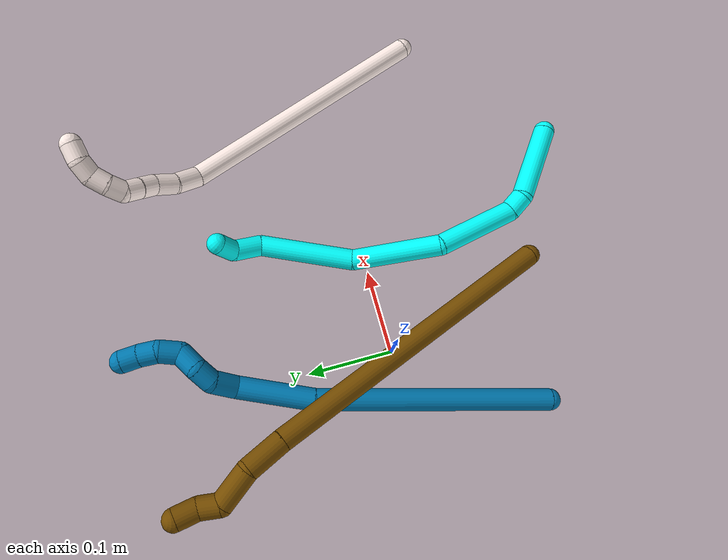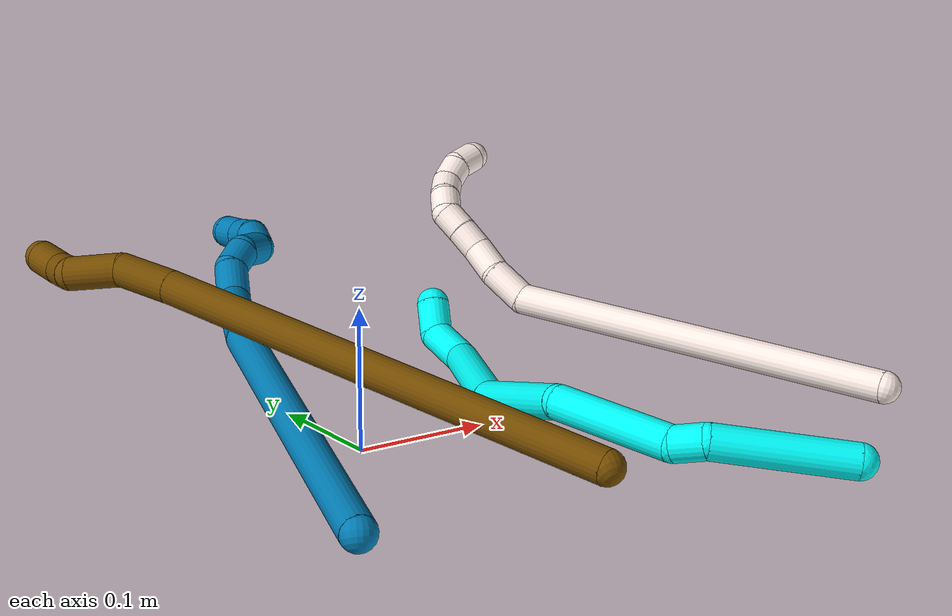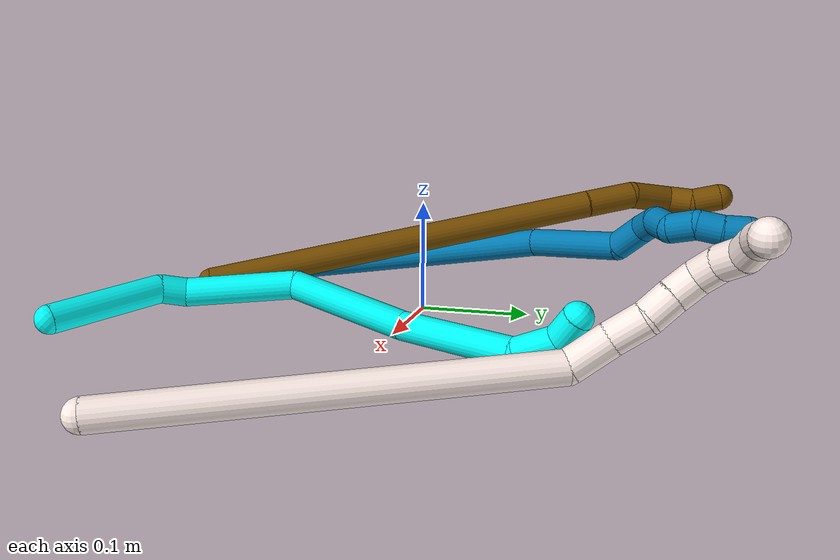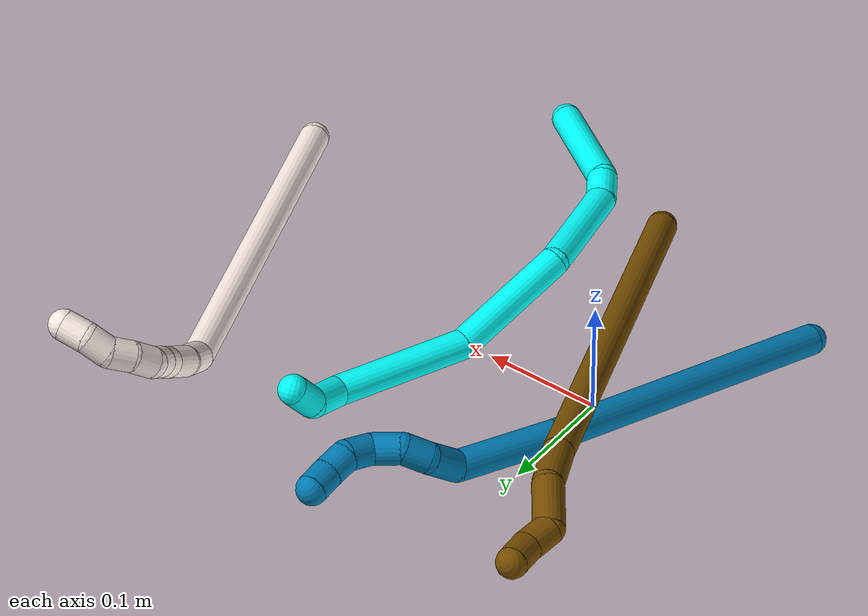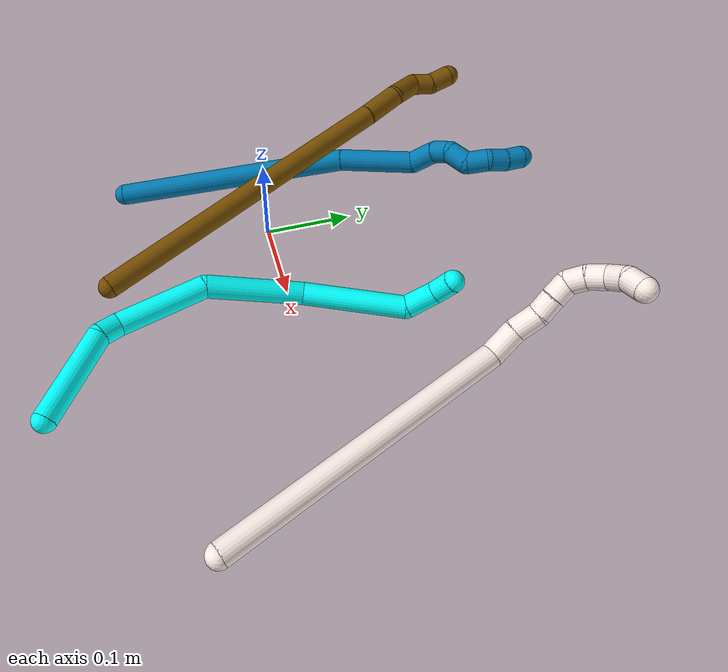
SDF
<sdf version="1.7">
 <world name="default">
  <model name="3">
   <static>0</static>
   <link name="3">
    <collision name="collision-cylinder-e_1_1_4">
     <pose>-0.016911 0.040399 -0.021693 -2.06359 -0.353323 0.580153</pose>
     <geometry><cylinder><radius>0.0125</radius><length>0.097748</length></cylinder></geometry>
     <surface>
      <friction><ode><mu>1.16</mu><mu2>1.16</mu2><slip1>0</slip1><slip2>0</slip2></ode></friction>
      <contact><ode><kp>1e+06</kp><kd>1</kd><max_vel>0</max_vel><min_depth>0.001</min_depth></ode></contact>
     </surface>
    </collision>
    <visual name="visual-cylinder-e_1_1_4">
     <pose>-0.016911 0.040399 -0.021693 -2.06359 -0.353323 0.580153</pose>
     <geometry><cylinder><radius>0.0125</radius><length>0.097748</length></cylinder></geometry>
     <material><ambient>0.003922 1 0.996078 1</ambient></material>
    </visual>
    <collision name="collision-cylinder-e_2_4_5">
     <pose>-0.035006 0.087976 -0.052627 -2.48109 -0.100782 0.292145</pose>
     <geometry><cylinder><radius>0.0125</radius><length>0.023522</length></cylinder></geometry>
     <surface>
      <friction><ode><mu>1.16</mu><mu2>1.16</mu2><slip1>0</slip1><slip2>0</slip2></ode></friction>
      <contact><ode><kp>1e+06</kp><kd>1</kd><max_vel>0</max_vel><min_depth>0.001</min_depth></ode></contact>
     </surface>
    </collision>
    <visual name="visual-cylinder-e_2_4_5">
     <pose>-0.035006 0.087976 -0.052627 -2.48109 -0.100782 0.292145</pose>
     <geometry><cylinder><radius>0.0125</radius><length>0.023522</length></cylinder></geometry>
     <material><ambient>0.003922 1 0.996078 1</ambient></material>
    </visual>
    <collision name="collision-cylinder-e_3_5_6">
     <pose>-0.021079 0.129676 -0.092235 -2.29228 0.317527 -0.680635</pose>
     <geometry><cylinder><radius>0.0125</radius><length>0.096792</length></cylinder></geometry>
     <surface>
      <friction><ode><mu>1.16</mu><mu2>1.16</mu2><slip1>0</slip1><slip2>0</slip2></ode></friction>
      <contact><ode><kp>1e+06</kp><kd>1</kd><max_vel>0</max_vel><min_depth>0.001</min_depth></ode></contact>
     </surface>
    </collision>
    <visual name="visual-cylinder-e_3_5_6">
     <pose>-0.021079 0.129676 -0.092235 -2.29228 0.317527 -0.680635</pose>
     <geometry><cylinder><radius>0.0125</radius><length>0.096792</length></cylinder></geometry>
     <material><ambient>0.003922 1 0.996078 1</ambient></material>
    </visual>
    <collision name="collision-cylinder-e_4_6_7">
     <pose>0.022253 0.180715 -0.164682 -2.76753 0.558095 -1.97418</pose>
     <geometry><cylinder><radius>0.0125</radius><length>0.106583</length></cylinder></geometry>
     <surface>
      <friction><ode><mu>1.16</mu><mu2>1.16</mu2><slip1>0</slip1><slip2>0</slip2></ode></friction>
      <contact><ode><kp>1e+06</kp><kd>1</kd><max_vel>0</max_vel><min_depth>0.001</min_depth></ode></contact>
     </surface>
    </collision>
    <visual name="visual-cylinder-e_4_6_7">
     <pose>0.022253 0.180715 -0.164682 -2.76753 0.558095 -1.97418</pose>
     <geometry><cylinder><radius>0.0125</radius><length>0.106583</length></cylinder></geometry>
     <material><ambient>0.003922 1 0.996078 1</ambient></material>
    </visual>
    <collision name="collision-cylinder-e_5_7_8">
     <pose>0.095133 0.213399 -0.237935 -2.66318 0.904446 -2.21108</pose>
     <geometry><cylinder><radius>0.0125</radius><length>0.113623</length></cylinder></geometry>
     <surface>
      <friction><ode><mu>1.16</mu><mu2>1.16</mu2><slip1>0</slip1><slip2>0</slip2></ode></friction>
      <contact><ode><kp>1e+06</kp><kd>1</kd><max_vel>0</max_vel><min_depth>0.001</min_depth></ode></contact>
     </surface>
    </collision>
    <visual name="visual-cylinder-e_5_7_8">
     <pose>0.095133 0.213399 -0.237935 -2.66318 0.904446 -2.21108</pose>
     <geometry><cylinder><radius>0.0125</radius><length>0.113623</length></cylinder></geometry>
     <material><ambient>0.003922 1 0.996078 1</ambient></material>
    </visual>
    <collision name="collision-cylinder-e_6_8_9">
     <pose>0.148523 0.243193 -0.275849 -2.03015 0.521356 -0.811425</pose>
     <geometry><cylinder><radius>0.0125</radius><length>0.035064</length></cylinder></geometry>
     <surface>
      <friction><ode><mu>1.16</mu><mu2>1.16</mu2><slip1>0</slip1><slip2>0</slip2></ode></friction>
      <contact><ode><kp>1e+06</kp><kd>1</kd><max_vel>0</max_vel><min_depth>0.001</min_depth></ode></contact>
     </surface>
    </collision>
    <visual name="visual-cylinder-e_6_8_9">
     <pose>0.148523 0.243193 -0.275849 -2.03015 0.521356 -0.811425</pose>
     <geometry><cylinder><radius>0.0125</radius><length>0.035064</length></cylinder></geometry>
     <material><ambient>0.003922 1 0.996078 1</ambient></material>
    </visual>
    <collision name="collision-cylinder-e_7_9_2">
     <pose>0.166404 0.266021 -0.27952 -1.24879 0.756167 -0.557502</pose>
     <geometry><cylinder><radius>0.0125</radius><length>0.026668</length></cylinder></geometry>
     <surface>
      <friction><ode><mu>1.16</mu><mu2>1.16</mu2><slip1>0</slip1><slip2>0</slip2></ode></friction>
      <contact><ode><kp>1e+06</kp><kd>1</kd><max_vel>0</max_vel><min_depth>0.001</min_depth></ode></contact>
     </surface>
    </collision>
    <visual name="visual-cylinder-e_7_9_2">
     <pose>0.166404 0.266021 -0.27952 -1.24879 0.756167 -0.557502</pose>
     <geometry><cylinder><radius>0.0125</radius><length>0.026668</length></cylinder></geometry>
     <material><ambient>0.003922 1 0.996078 1</ambient></material>
    </visual>
    <collision name="collision-sphere-2">
     <pose>0.175554 0.275223 -0.27645 0 -0 0</pose>
     <geometry><sphere><radius>0.0125</radius></sphere></geometry>
     <surface>
      <friction><ode><mu>1.16</mu><mu2>1.16</mu2><slip1>0</slip1><slip2>0</slip2></ode></friction>
      <contact><ode><kp>1e+06</kp><kd>1</kd><max_vel>0</max_vel><min_depth>0.001</min_depth></ode></contact>
     </surface>
    </collision>
    <visual name="visual-sphere-2">
     <pose>0.175554 0.275223 -0.27645 0 -0 0</pose>
     <geometry><sphere><radius>0.0125</radius></sphere></geometry>
     <material><ambient>0.003922 1 0.996078 1</ambient></material>
    </visual>
    <collision name="collision-sphere-9">
     <pose>0.157255 0.256819 -0.28259 0 -0 0</pose>
     <geometry><sphere><radius>0.0125</radius></sphere></geometry>
     <surface>
      <friction><ode><mu>1.16</mu><mu2>1.16</mu2><slip1>0</slip1><slip2>0</slip2></ode></friction>
      <contact><ode><kp>1e+06</kp><kd>1</kd><max_vel>0</max_vel><min_depth>0.001</min_depth></ode></contact>
     </surface>
    </collision>
    <visual name="visual-sphere-9">
     <pose>0.157255 0.256819 -0.28259 0 -0 0</pose>
     <geometry><sphere><radius>0.0125</radius></sphere></geometry>
     <material><ambient>0.003922 1 0.996078 1</ambient></material>
    </visual>
    <collision name="collision-sphere-4">
     <pose>-0.033822 0.080798 -0.043387 0 -0 0</pose>
     <geometry><sphere><radius>0.0125</radius></sphere></geometry>
     <surface>
      <friction><ode><mu>1.16</mu><mu2>1.16</mu2><slip1>0</slip1><slip2>0</slip2></ode></friction>
      <contact><ode><kp>1e+06</kp><kd>1</kd><max_vel>0</max_vel><min_depth>0.001</min_depth></ode></contact>
     </surface>
    </collision>
    <visual name="visual-sphere-4">
     <pose>-0.033822 0.080798 -0.043387 0 -0 0</pose>
     <geometry><sphere><radius>0.0125</radius></sphere></geometry>
     <material><ambient>0.003922 1 0.996078 1</ambient></material>
    </visual>
    <collision name="collision-sphere-1">
     <geometry><sphere><radius>0.0125</radius></sphere></geometry>
     <surface>
      <friction><ode><mu>1.16</mu><mu2>1.16</mu2><slip1>0</slip1><slip2>0</slip2></ode></friction>
      <contact><ode><kp>1e+06</kp><kd>1</kd><max_vel>0</max_vel><min_depth>0.001</min_depth></ode></contact>
     </surface>
    </collision>
    <visual name="visual-sphere-1">
     <geometry><sphere><radius>0.0125</radius></sphere></geometry>
     <material><ambient>0.003922 1 0.996078 1</ambient></material>
    </visual>
    <collision name="collision-sphere-8">
     <pose>0.139792 0.229566 -0.269109 0 -0 0</pose>
     <geometry><sphere><radius>0.0125</radius></sphere></geometry>
     <surface>
      <friction><ode><mu>1.16</mu><mu2>1.16</mu2><slip1>0</slip1><slip2>0</slip2></ode></friction>
      <contact><ode><kp>1e+06</kp><kd>1</kd><max_vel>0</max_vel><min_depth>0.001</min_depth></ode></contact>
     </surface>
    </collision>
    <visual name="visual-sphere-8">
     <pose>0.139792 0.229566 -0.269109 0 -0 0</pose>
     <geometry><sphere><radius>0.0125</radius></sphere></geometry>
     <material><ambient>0.003922 1 0.996078 1</ambient></material>
    </visual>
    <collision name="collision-sphere-5">
     <pose>-0.036189 0.095155 -0.061867 0 -0 0</pose>
     <geometry><sphere><radius>0.0125</radius></sphere></geometry>
     <surface>
      <friction><ode><mu>1.16</mu><mu2>1.16</mu2><slip1>0</slip1><slip2>0</slip2></ode></friction>
      <contact><ode><kp>1e+06</kp><kd>1</kd><max_vel>0</max_vel><min_depth>0.001</min_depth></ode></contact>
     </surface>
    </collision>
    <visual name="visual-sphere-5">
     <pose>-0.036189 0.095155 -0.061867 0 -0 0</pose>
     <geometry><sphere><radius>0.0125</radius></sphere></geometry>
     <material><ambient>0.003922 1 0.996078 1</ambient></material>
    </visual>
    <collision name="collision-sphere-6">
     <pose>-0.005969 0.164197 -0.122603 0 -0 0</pose>
     <geometry><sphere><radius>0.0125</radius></sphere></geometry>
     <surface>
      <friction><ode><mu>1.16</mu><mu2>1.16</mu2><slip1>0</slip1><slip2>0</slip2></ode></friction>
      <contact><ode><kp>1e+06</kp><kd>1</kd><max_vel>0</max_vel><min_depth>0.001</min_depth></ode></contact>
     </surface>
    </collision>
    <visual name="visual-sphere-6">
     <pose>-0.005969 0.164197 -0.122603 0 -0 0</pose>
     <geometry><sphere><radius>0.0125</radius></sphere></geometry>
     <material><ambient>0.003922 1 0.996078 1</ambient></material>
    </visual>
    <collision name="collision-sphere-7">
     <pose>0.050474 0.197233 -0.206761 0 -0 0</pose>
     <geometry><sphere><radius>0.0125</radius></sphere></geometry>
     <surface>
      <friction><ode><mu>1.16</mu><mu2>1.16</mu2><slip1>0</slip1><slip2>0</slip2></ode></friction>
      <contact><ode><kp>1e+06</kp><kd>1</kd><max_vel>0</max_vel><min_depth>0.001</min_depth></ode></contact>
     </surface>
    </collision>
    <visual name="visual-sphere-7">
     <pose>0.050474 0.197233 -0.206761 0 -0 0</pose>
     <geometry><sphere><radius>0.0125</radius></sphere></geometry>
     <material><ambient>0.003922 1 0.996078 1</ambient></material>
    </visual>
    <inertial>
     <pose>0.03662 0.155399 -0.148 0 -0 0</pose>
     <mass>0.5</mass>
     <inertia>
      <ixx>-9.3e-05</ixx>
      <ixy>0</ixy>
      <ixz>0</ixz>
      <iyy>-1.9e-05</iyy>
      <iyz>0</iyz>
      <izz>-0.000377</izz>
     </inertia>
    </inertial>
   </link>
   <pose>0.213137 -0.259617 0.023736 0.726879 -0.251376 0.526373</pose>
  </model>
  <model name="9">
   <static>0</static>
   <link name="9">
    <collision name="collision-cylinder-e_1_1_4">
     <pose>0.022957 0.103291 0.086231 -0.87517 0.168985 -0.079204</pose>
     <geometry><cylinder><radius>0.0125</radius><length>0.272996</length></cylinder></geometry>
     <surface>
      <friction><ode><mu>1.16</mu><mu2>1.16</mu2><slip1>0</slip1><slip2>0</slip2></ode></friction>
      <contact><ode><kp>1e+06</kp><kd>1</kd><max_vel>0</max_vel><min_depth>0.001</min_depth></ode></contact>
     </surface>
    </collision>
    <visual name="visual-cylinder-e_1_1_4">
     <pose>0.022957 0.103291 0.086231 -0.87517 0.168985 -0.079204</pose>
     <geometry><cylinder><radius>0.0125</radius><length>0.272996</length></cylinder></geometry>
     <material><ambient>0 0.490196 0.709804 1</ambient></material>
    </visual>
    <collision name="collision-cylinder-e_2_4_5">
     <pose>0.060989 0.239268 0.196223 -0.942214 0.357076 -0.183322</pose>
     <geometry><cylinder><radius>0.0125</radius><length>0.086263</length></cylinder></geometry>
     <surface>
      <friction><ode><mu>1.16</mu><mu2>1.16</mu2><slip1>0</slip1><slip2>0</slip2></ode></friction>
      <contact><ode><kp>1e+06</kp><kd>1</kd><max_vel>0</max_vel><min_depth>0.001</min_depth></ode></contact>
     </surface>
    </collision>
    <visual name="visual-cylinder-e_2_4_5">
     <pose>0.060989 0.239268 0.196223 -0.942214 0.357076 -0.183322</pose>
     <geometry><cylinder><radius>0.0125</radius><length>0.086263</length></cylinder></geometry>
     <material><ambient>0 0.490196 0.709804 1</ambient></material>
    </visual>
    <collision name="collision-cylinder-e_3_5_6">
     <pose>0.07861 0.277318 0.234145 -0.362088 0.166529 -0.030551</pose>
     <geometry><cylinder><radius>0.0125</radius><length>0.030709</length></cylinder></geometry>
     <surface>
      <friction><ode><mu>1.16</mu><mu2>1.16</mu2><slip1>0</slip1><slip2>0</slip2></ode></friction>
      <contact><ode><kp>1e+06</kp><kd>1</kd><max_vel>0</max_vel><min_depth>0.001</min_depth></ode></contact>
     </surface>
    </collision>
    <visual name="visual-cylinder-e_3_5_6">
     <pose>0.07861 0.277318 0.234145 -0.362088 0.166529 -0.030551</pose>
     <geometry><cylinder><radius>0.0125</radius><length>0.030709</length></cylinder></geometry>
     <material><ambient>0 0.490196 0.709804 1</ambient></material>
    </visual>
    <collision name="collision-cylinder-e_4_6_7">
     <pose>0.087826 0.285112 0.256401 -0.291617 0.668116 -0.101845</pose>
     <geometry><cylinder><radius>0.0125</radius><length>0.021534</length></cylinder></geometry>
     <surface>
      <friction><ode><mu>1.16</mu><mu2>1.16</mu2><slip1>0</slip1><slip2>0</slip2></ode></friction>
      <contact><ode><kp>1e+06</kp><kd>1</kd><max_vel>0</max_vel><min_depth>0.001</min_depth></ode></contact>
     </surface>
    </collision>
    <visual name="visual-cylinder-e_4_6_7">
     <pose>0.087826 0.285112 0.256401 -0.291617 0.668116 -0.101845</pose>
     <geometry><cylinder><radius>0.0125</radius><length>0.021534</length></cylinder></geometry>
     <material><ambient>0 0.490196 0.709804 1</ambient></material>
    </visual>
    <collision name="collision-cylinder-e_5_7_8">
     <pose>0.104559 0.29306 0.268243 -0.974295 0.985433 -0.554174</pose>
     <geometry><cylinder><radius>0.0125</radius><length>0.024146</length></cylinder></geometry>
     <surface>
      <friction><ode><mu>1.16</mu><mu2>1.16</mu2><slip1>0</slip1><slip2>0</slip2></ode></friction>
      <contact><ode><kp>1e+06</kp><kd>1</kd><max_vel>0</max_vel><min_depth>0.001</min_depth></ode></contact>
     </surface>
    </collision>
    <visual name="visual-cylinder-e_5_7_8">
     <pose>0.104559 0.29306 0.268243 -0.974295 0.985433 -0.554174</pose>
     <geometry><cylinder><radius>0.0125</radius><length>0.024146</length></cylinder></geometry>
     <material><ambient>0 0.490196 0.709804 1</ambient></material>
    </visual>
    <collision name="collision-cylinder-e_6_8_9">
     <pose>0.117207 0.306895 0.27975 -0.819975 0.223519 -0.097474</pose>
     <geometry><cylinder><radius>0.0125</radius><length>0.023328</length></cylinder></geometry>
     <surface>
      <friction><ode><mu>1.16</mu><mu2>1.16</mu2><slip1>0</slip1><slip2>0</slip2></ode></friction>
      <contact><ode><kp>1e+06</kp><kd>1</kd><max_vel>0</max_vel><min_depth>0.001</min_depth></ode></contact>
     </surface>
    </collision>
    <visual name="visual-cylinder-e_6_8_9">
     <pose>0.117207 0.306895 0.27975 -0.819975 0.223519 -0.097474</pose>
     <geometry><cylinder><radius>0.0125</radius><length>0.023328</length></cylinder></geometry>
     <material><ambient>0 0.490196 0.709804 1</ambient></material>
    </visual>
    <collision name="collision-cylinder-e_7_9_10">
     <pose>0.120581 0.325065 0.290726 -1.25525 0.075909 -0.055083</pose>
     <geometry><cylinder><radius>0.0125</radius><length>0.020792</length></cylinder></geometry>
     <surface>
      <friction><ode><mu>1.16</mu><mu2>1.16</mu2><slip1>0</slip1><slip2>0</slip2></ode></friction>
      <contact><ode><kp>1e+06</kp><kd>1</kd><max_vel>0</max_vel><min_depth>0.001</min_depth></ode></contact>
     </surface>
    </collision>
    <visual name="visual-cylinder-e_7_9_10">
     <pose>0.120581 0.325065 0.290726 -1.25525 0.075909 -0.055083</pose>
     <geometry><cylinder><radius>0.0125</radius><length>0.020792</length></cylinder></geometry>
     <material><ambient>0 0.490196 0.709804 1</ambient></material>
    </visual>
    <collision name="collision-cylinder-e_8_10_2">
     <pose>0.120541 0.344174 0.297941 -1.16307 -0.081999 0.053921</pose>
     <geometry><cylinder><radius>0.0125</radius><length>0.020232</length></cylinder></geometry>
     <surface>
      <friction><ode><mu>1.16</mu><mu2>1.16</mu2><slip1>0</slip1><slip2>0</slip2></ode></friction>
      <contact><ode><kp>1e+06</kp><kd>1</kd><max_vel>0</max_vel><min_depth>0.001</min_depth></ode></contact>
     </surface>
    </collision>
    <visual name="visual-cylinder-e_8_10_2">
     <pose>0.120541 0.344174 0.297941 -1.16307 -0.081999 0.053921</pose>
     <geometry><cylinder><radius>0.0125</radius><length>0.020232</length></cylinder></geometry>
     <material><ambient>0 0.490196 0.709804 1</ambient></material>
    </visual>
    <collision name="collision-sphere-2">
     <pose>0.119712 0.35343 0.301939 0 -0 0</pose>
     <geometry><sphere><radius>0.0125</radius></sphere></geometry>
     <surface>
      <friction><ode><mu>1.16</mu><mu2>1.16</mu2><slip1>0</slip1><slip2>0</slip2></ode></friction>
      <contact><ode><kp>1e+06</kp><kd>1</kd><max_vel>0</max_vel><min_depth>0.001</min_depth></ode></contact>
     </surface>
    </collision>
    <visual name="visual-sphere-2">
     <pose>0.119712 0.35343 0.301939 0 -0 0</pose>
     <geometry><sphere><radius>0.0125</radius></sphere></geometry>
     <material><ambient>0 0.490196 0.709804 1</ambient></material>
    </visual>
    <collision name="collision-sphere-10">
     <pose>0.121369 0.334919 0.293943 0 -0 0</pose>
     <geometry><sphere><radius>0.0125</radius></sphere></geometry>
     <surface>
      <friction><ode><mu>1.16</mu><mu2>1.16</mu2><slip1>0</slip1><slip2>0</slip2></ode></friction>
      <contact><ode><kp>1e+06</kp><kd>1</kd><max_vel>0</max_vel><min_depth>0.001</min_depth></ode></contact>
     </surface>
    </collision>
    <visual name="visual-sphere-10">
     <pose>0.121369 0.334919 0.293943 0 -0 0</pose>
     <geometry><sphere><radius>0.0125</radius></sphere></geometry>
     <material><ambient>0 0.490196 0.709804 1</ambient></material>
    </visual>
    <collision name="collision-sphere-9">
     <pose>0.119793 0.31521 0.28751 0 -0 0</pose>
     <geometry><sphere><radius>0.0125</radius></sphere></geometry>
     <surface>
      <friction><ode><mu>1.16</mu><mu2>1.16</mu2><slip1>0</slip1><slip2>0</slip2></ode></friction>
      <contact><ode><kp>1e+06</kp><kd>1</kd><max_vel>0</max_vel><min_depth>0.001</min_depth></ode></contact>
     </surface>
    </collision>
    <visual name="visual-sphere-9">
     <pose>0.119793 0.31521 0.28751 0 -0 0</pose>
     <geometry><sphere><radius>0.0125</radius></sphere></geometry>
     <material><ambient>0 0.490196 0.709804 1</ambient></material>
    </visual>
    <collision name="collision-sphere-4">
     <pose>0.045913 0.206581 0.172462 0 -0 0</pose>
     <geometry><sphere><radius>0.0125</radius></sphere></geometry>
     <surface>
      <friction><ode><mu>1.16</mu><mu2>1.16</mu2><slip1>0</slip1><slip2>0</slip2></ode></friction>
      <contact><ode><kp>1e+06</kp><kd>1</kd><max_vel>0</max_vel><min_depth>0.001</min_depth></ode></contact>
     </surface>
    </collision>
    <visual name="visual-sphere-4">
     <pose>0.045913 0.206581 0.172462 0 -0 0</pose>
     <geometry><sphere><radius>0.0125</radius></sphere></geometry>
     <material><ambient>0 0.490196 0.709804 1</ambient></material>
    </visual>
    <collision name="collision-sphere-1">
     <geometry><sphere><radius>0.0125</radius></sphere></geometry>
     <surface>
      <friction><ode><mu>1.16</mu><mu2>1.16</mu2><slip1>0</slip1><slip2>0</slip2></ode></friction>
      <contact><ode><kp>1e+06</kp><kd>1</kd><max_vel>0</max_vel><min_depth>0.001</min_depth></ode></contact>
     </surface>
    </collision>
    <visual name="visual-sphere-1">
     <geometry><sphere><radius>0.0125</radius></sphere></geometry>
     <material><ambient>0 0.490196 0.709804 1</ambient></material>
    </visual>
    <collision name="collision-sphere-8">
     <pose>0.114622 0.298579 0.27199 0 -0 0</pose>
     <geometry><sphere><radius>0.0125</radius></sphere></geometry>
     <surface>
      <friction><ode><mu>1.16</mu><mu2>1.16</mu2><slip1>0</slip1><slip2>0</slip2></ode></friction>
      <contact><ode><kp>1e+06</kp><kd>1</kd><max_vel>0</max_vel><min_depth>0.001</min_depth></ode></contact>
     </surface>
    </collision>
    <visual name="visual-sphere-8">
     <pose>0.114622 0.298579 0.27199 0 -0 0</pose>
     <geometry><sphere><radius>0.0125</radius></sphere></geometry>
     <material><ambient>0 0.490196 0.709804 1</ambient></material>
    </visual>
    <collision name="collision-sphere-5">
     <pose>0.076065 0.271954 0.219985 0 -0 0</pose>
     <geometry><sphere><radius>0.0125</radius></sphere></geometry>
     <surface>
      <friction><ode><mu>1.16</mu><mu2>1.16</mu2><slip1>0</slip1><slip2>0</slip2></ode></friction>
      <contact><ode><kp>1e+06</kp><kd>1</kd><max_vel>0</max_vel><min_depth>0.001</min_depth></ode></contact>
     </surface>
    </collision>
    <visual name="visual-sphere-5">
     <pose>0.076065 0.271954 0.219985 0 -0 0</pose>
     <geometry><sphere><radius>0.0125</radius></sphere></geometry>
     <material><ambient>0 0.490196 0.709804 1</ambient></material>
    </visual>
    <collision name="collision-sphere-6">
     <pose>0.081155 0.282682 0.248305 0 -0 0</pose>
     <geometry><sphere><radius>0.0125</radius></sphere></geometry>
     <surface>
      <friction><ode><mu>1.16</mu><mu2>1.16</mu2><slip1>0</slip1><slip2>0</slip2></ode></friction>
      <contact><ode><kp>1e+06</kp><kd>1</kd><max_vel>0</max_vel><min_depth>0.001</min_depth></ode></contact>
     </surface>
    </collision>
    <visual name="visual-sphere-6">
     <pose>0.081155 0.282682 0.248305 0 -0 0</pose>
     <geometry><sphere><radius>0.0125</radius></sphere></geometry>
     <material><ambient>0 0.490196 0.709804 1</ambient></material>
    </visual>
    <collision name="collision-sphere-7">
     <pose>0.094496 0.287542 0.264496 0 -0 0</pose>
     <geometry><sphere><radius>0.0125</radius></sphere></geometry>
     <surface>
      <friction><ode><mu>1.16</mu><mu2>1.16</mu2><slip1>0</slip1><slip2>0</slip2></ode></friction>
      <contact><ode><kp>1e+06</kp><kd>1</kd><max_vel>0</max_vel><min_depth>0.001</min_depth></ode></contact>
     </surface>
    </collision>
    <visual name="visual-sphere-7">
     <pose>0.094496 0.287542 0.264496 0 -0 0</pose>
     <geometry><sphere><radius>0.0125</radius></sphere></geometry>
     <material><ambient>0 0.490196 0.709804 1</ambient></material>
    </visual>
    <inertial>
     <pose>0.052076 0.182902 0.15651 0 -0 0</pose>
     <mass>0.5</mass>
     <inertia>
      <ixx>0.001605</ixx>
      <ixy>0</ixy>
      <ixz>0</ixz>
      <iyy>0.001036</iyy>
      <iyz>0</iyz>
      <izz>-0.001628</izz>
     </inertia>
    </inertial>
   </link>
   <pose>-0.100278 -0.159317 0.011498 -0.465186 0.210121 -0.03004</pose>
  </model>
  <model name="11">
   <static>0</static>
   <link name="11">
    <collision name="collision-cylinder-e_1_1_4">
     <pose>-0.098894 0.123034 0.014837 -1.45079 -0.673525 0.601971</pose>
     <geometry><cylinder><radius>0.0125</radius><length>0.317096</length></cylinder></geometry>
     <surface>
      <friction><ode><mu>1.16</mu><mu2>1.16</mu2><slip1>0</slip1><slip2>0</slip2></ode></friction>
      <contact><ode><kp>1e+06</kp><kd>1</kd><max_vel>0</max_vel><min_depth>0.001</min_depth></ode></contact>
     </surface>
    </collision>
    <visual name="visual-cylinder-e_1_1_4">
     <pose>-0.098894 0.123034 0.014837 -1.45079 -0.673525 0.601971</pose>
     <geometry><cylinder><radius>0.0125</radius><length>0.317096</length></cylinder></geometry>
     <material><ambient>1 0.933333 0.909804 1</ambient></material>
    </visual>
    <collision name="collision-cylinder-e_2_4_5">
     <pose>-0.205436 0.259491 0.023192 -2.02065 -0.474121 0.734952</pose>
     <geometry><cylinder><radius>0.0125</radius><length>0.033507</length></cylinder></geometry>
     <surface>
      <friction><ode><mu>1.16</mu><mu2>1.16</mu2><slip1>0</slip1><slip2>0</slip2></ode></friction>
      <contact><ode><kp>1e+06</kp><kd>1</kd><max_vel>0</max_vel><min_depth>0.001</min_depth></ode></contact>
     </surface>
    </collision>
    <visual name="visual-cylinder-e_2_4_5">
     <pose>-0.205436 0.259491 0.023192 -2.02065 -0.474121 0.734952</pose>
     <geometry><cylinder><radius>0.0125</radius><length>0.033507</length></cylinder></geometry>
     <material><ambient>1 0.933333 0.909804 1</ambient></material>
    </visual>
    <collision name="collision-cylinder-e_3_5_6">
     <pose>-0.221475 0.281638 0.010031 -2.22419 -0.652173 1.20086</pose>
     <geometry><cylinder><radius>0.0125</radius><length>0.02765</length></cylinder></geometry>
     <surface>
      <friction><ode><mu>1.16</mu><mu2>1.16</mu2><slip1>0</slip1><slip2>0</slip2></ode></friction>
      <contact><ode><kp>1e+06</kp><kd>1</kd><max_vel>0</max_vel><min_depth>0.001</min_depth></ode></contact>
     </surface>
    </collision>
    <visual name="visual-cylinder-e_3_5_6">
     <pose>-0.221475 0.281638 0.010031 -2.22419 -0.652173 1.20086</pose>
     <geometry><cylinder><radius>0.0125</radius><length>0.02765</length></cylinder></geometry>
     <material><ambient>1 0.933333 0.909804 1</ambient></material>
    </visual>
    <collision name="collision-cylinder-e_4_6_7">
     <pose>-0.233948 0.29869 -0.001995 -2.14155 -0.391237 0.695881</pose>
     <geometry><cylinder><radius>0.0125</radius><length>0.021412</length></cylinder></geometry>
     <surface>
      <friction><ode><mu>1.16</mu><mu2>1.16</mu2><slip1>0</slip1><slip2>0</slip2></ode></friction>
      <contact><ode><kp>1e+06</kp><kd>1</kd><max_vel>0</max_vel><min_depth>0.001</min_depth></ode></contact>
     </surface>
    </collision>
    <visual name="visual-cylinder-e_4_6_7">
     <pose>-0.233948 0.29869 -0.001995 -2.14155 -0.391237 0.695881</pose>
     <geometry><cylinder><radius>0.0125</radius><length>0.021412</length></cylinder></geometry>
     <material><ambient>1 0.933333 0.909804 1</ambient></material>
    </visual>
    <collision name="collision-cylinder-e_5_7_8">
     <pose>-0.24238 0.314898 -0.012058 -2.11009 -0.442349 0.755162</pose>
     <geometry><cylinder><radius>0.0125</radius><length>0.020321</length></cylinder></geometry>
     <surface>
      <friction><ode><mu>1.16</mu><mu2>1.16</mu2><slip1>0</slip1><slip2>0</slip2></ode></friction>
      <contact><ode><kp>1e+06</kp><kd>1</kd><max_vel>0</max_vel><min_depth>0.001</min_depth></ode></contact>
     </surface>
    </collision>
    <visual name="visual-cylinder-e_5_7_8">
     <pose>-0.24238 0.314898 -0.012058 -2.11009 -0.442349 0.755162</pose>
     <geometry><cylinder><radius>0.0125</radius><length>0.020321</length></cylinder></geometry>
     <material><ambient>1 0.933333 0.909804 1</ambient></material>
    </visual>
    <collision name="collision-cylinder-e_6_8_9">
     <pose>-0.253851 0.324982 -0.023445 -2.82255 -0.792091 2.40697</pose>
     <geometry><cylinder><radius>0.0125</radius><length>0.020009</length></cylinder></geometry>
     <surface>
      <friction><ode><mu>1.16</mu><mu2>1.16</mu2><slip1>0</slip1><slip2>0</slip2></ode></friction>
      <contact><ode><kp>1e+06</kp><kd>1</kd><max_vel>0</max_vel><min_depth>0.001</min_depth></ode></contact>
     </surface>
    </collision>
    <visual name="visual-cylinder-e_6_8_9">
     <pose>-0.253851 0.324982 -0.023445 -2.82255 -0.792091 2.40697</pose>
     <geometry><cylinder><radius>0.0125</radius><length>0.020009</length></cylinder></geometry>
     <material><ambient>1 0.933333 0.909804 1</ambient></material>
    </visual>
    <collision name="collision-cylinder-e_7_9_10">
     <pose>-0.269199 0.327277 -0.035805 -3.12552 -0.965809 3.11095</pose>
     <geometry><cylinder><radius>0.0125</radius><length>0.020002</length></cylinder></geometry>
     <surface>
      <friction><ode><mu>1.16</mu><mu2>1.16</mu2><slip1>0</slip1><slip2>0</slip2></ode></friction>
      <contact><ode><kp>1e+06</kp><kd>1</kd><max_vel>0</max_vel><min_depth>0.001</min_depth></ode></contact>
     </surface>
    </collision>
    <visual name="visual-cylinder-e_7_9_10">
     <pose>-0.269199 0.327277 -0.035805 -3.12552 -0.965809 3.11095</pose>
     <geometry><cylinder><radius>0.0125</radius><length>0.020002</length></cylinder></geometry>
     <material><ambient>1 0.933333 0.909804 1</ambient></material>
    </visual>
    <collision name="collision-cylinder-e_8_10_11">
     <pose>-0.282953 0.324984 -0.049478 2.85145 -0.58568 -2.23915</pose>
     <geometry><cylinder><radius>0.0125</radius><length>0.02</length></cylinder></geometry>
     <surface>
      <friction><ode><mu>1.16</mu><mu2>1.16</mu2><slip1>0</slip1><slip2>0</slip2></ode></friction>
      <contact><ode><kp>1e+06</kp><kd>1</kd><max_vel>0</max_vel><min_depth>0.001</min_depth></ode></contact>
     </surface>
    </collision>
    <visual name="visual-cylinder-e_8_10_11">
     <pose>-0.282953 0.324984 -0.049478 2.85145 -0.58568 -2.23915</pose>
     <geometry><cylinder><radius>0.0125</radius><length>0.02</length></cylinder></geometry>
     <material><ambient>1 0.933333 0.909804 1</ambient></material>
    </visual>
    <collision name="collision-cylinder-e_9_11_2">
     <pose>-0.294169 0.316733 -0.063228 2.34738 -0.605063 -1.27957</pose>
     <geometry><cylinder><radius>0.0125</radius><length>0.020002</length></cylinder></geometry>
     <surface>
      <friction><ode><mu>1.16</mu><mu2>1.16</mu2><slip1>0</slip1><slip2>0</slip2></ode></friction>
      <contact><ode><kp>1e+06</kp><kd>1</kd><max_vel>0</max_vel><min_depth>0.001</min_depth></ode></contact>
     </surface>
    </collision>
    <visual name="visual-cylinder-e_9_11_2">
     <pose>-0.294169 0.316733 -0.063228 2.34738 -0.605063 -1.27957</pose>
     <geometry><cylinder><radius>0.0125</radius><length>0.020002</length></cylinder></geometry>
     <material><ambient>1 0.933333 0.909804 1</ambient></material>
    </visual>
    <collision name="collision-sphere-2">
     <pose>-0.299858 0.310866 -0.068993 0 -0 0</pose>
     <geometry><sphere><radius>0.0125</radius></sphere></geometry>
     <surface>
      <friction><ode><mu>1.16</mu><mu2>1.16</mu2><slip1>0</slip1><slip2>0</slip2></ode></friction>
      <contact><ode><kp>1e+06</kp><kd>1</kd><max_vel>0</max_vel><min_depth>0.001</min_depth></ode></contact>
     </surface>
    </collision>
    <visual name="visual-sphere-2">
     <pose>-0.299858 0.310866 -0.068993 0 -0 0</pose>
     <geometry><sphere><radius>0.0125</radius></sphere></geometry>
     <material><ambient>1 0.933333 0.909804 1</ambient></material>
    </visual>
    <collision name="collision-sphere-11">
     <pose>-0.28848 0.3226 -0.057463 0 -0 0</pose>
     <geometry><sphere><radius>0.0125</radius></sphere></geometry>
     <surface>
      <friction><ode><mu>1.16</mu><mu2>1.16</mu2><slip1>0</slip1><slip2>0</slip2></ode></friction>
      <contact><ode><kp>1e+06</kp><kd>1</kd><max_vel>0</max_vel><min_depth>0.001</min_depth></ode></contact>
     </surface>
    </collision>
    <visual name="visual-sphere-11">
     <pose>-0.28848 0.3226 -0.057463 0 -0 0</pose>
     <geometry><sphere><radius>0.0125</radius></sphere></geometry>
     <material><ambient>1 0.933333 0.909804 1</ambient></material>
    </visual>
    <collision name="collision-sphere-10">
     <pose>-0.277425 0.327369 -0.041493 0 -0 0</pose>
     <geometry><sphere><radius>0.0125</radius></sphere></geometry>
     <surface>
      <friction><ode><mu>1.16</mu><mu2>1.16</mu2><slip1>0</slip1><slip2>0</slip2></ode></friction>
      <contact><ode><kp>1e+06</kp><kd>1</kd><max_vel>0</max_vel><min_depth>0.001</min_depth></ode></contact>
     </surface>
    </collision>
    <visual name="visual-sphere-10">
     <pose>-0.277425 0.327369 -0.041493 0 -0 0</pose>
     <geometry><sphere><radius>0.0125</radius></sphere></geometry>
     <material><ambient>1 0.933333 0.909804 1</ambient></material>
    </visual>
    <collision name="collision-sphere-9">
     <pose>-0.260973 0.327186 -0.030118 0 -0 0</pose>
     <geometry><sphere><radius>0.0125</radius></sphere></geometry>
     <surface>
      <friction><ode><mu>1.16</mu><mu2>1.16</mu2><slip1>0</slip1><slip2>0</slip2></ode></friction>
      <contact><ode><kp>1e+06</kp><kd>1</kd><max_vel>0</max_vel><min_depth>0.001</min_depth></ode></contact>
     </surface>
    </collision>
    <visual name="visual-sphere-9">
     <pose>-0.260973 0.327186 -0.030118 0 -0 0</pose>
     <geometry><sphere><radius>0.0125</radius></sphere></geometry>
     <material><ambient>1 0.933333 0.909804 1</ambient></material>
    </visual>
    <collision name="collision-sphere-4">
     <pose>-0.197787 0.246068 0.029673 0 -0 0</pose>
     <geometry><sphere><radius>0.0125</radius></sphere></geometry>
     <surface>
      <friction><ode><mu>1.16</mu><mu2>1.16</mu2><slip1>0</slip1><slip2>0</slip2></ode></friction>
      <contact><ode><kp>1e+06</kp><kd>1</kd><max_vel>0</max_vel><min_depth>0.001</min_depth></ode></contact>
     </surface>
    </collision>
    <visual name="visual-sphere-4">
     <pose>-0.197787 0.246068 0.029673 0 -0 0</pose>
     <geometry><sphere><radius>0.0125</radius></sphere></geometry>
     <material><ambient>1 0.933333 0.909804 1</ambient></material>
    </visual>
    <collision name="collision-sphere-1">
     <geometry><sphere><radius>0.0125</radius></sphere></geometry>
     <surface>
      <friction><ode><mu>1.16</mu><mu2>1.16</mu2><slip1>0</slip1><slip2>0</slip2></ode></friction>
      <contact><ode><kp>1e+06</kp><kd>1</kd><max_vel>0</max_vel><min_depth>0.001</min_depth></ode></contact>
     </surface>
    </collision>
    <visual name="visual-sphere-1">
     <geometry><sphere><radius>0.0125</radius></sphere></geometry>
     <material><ambient>1 0.933333 0.909804 1</ambient></material>
    </visual>
    <collision name="collision-sphere-8">
     <pose>-0.24673 0.322778 -0.016773 0 -0 0</pose>
     <geometry><sphere><radius>0.0125</radius></sphere></geometry>
     <surface>
      <friction><ode><mu>1.16</mu><mu2>1.16</mu2><slip1>0</slip1><slip2>0</slip2></ode></friction>
      <contact><ode><kp>1e+06</kp><kd>1</kd><max_vel>0</max_vel><min_depth>0.001</min_depth></ode></contact>
     </surface>
    </collision>
    <visual name="visual-sphere-8">
     <pose>-0.24673 0.322778 -0.016773 0 -0 0</pose>
     <geometry><sphere><radius>0.0125</radius></sphere></geometry>
     <material><ambient>1 0.933333 0.909804 1</ambient></material>
    </visual>
    <collision name="collision-sphere-5">
     <pose>-0.213085 0.272913 0.016711 0 -0 0</pose>
     <geometry><sphere><radius>0.0125</radius></sphere></geometry>
     <surface>
      <friction><ode><mu>1.16</mu><mu2>1.16</mu2><slip1>0</slip1><slip2>0</slip2></ode></friction>
      <contact><ode><kp>1e+06</kp><kd>1</kd><max_vel>0</max_vel><min_depth>0.001</min_depth></ode></contact>
     </surface>
    </collision>
    <visual name="visual-sphere-5">
     <pose>-0.213085 0.272913 0.016711 0 -0 0</pose>
     <geometry><sphere><radius>0.0125</radius></sphere></geometry>
     <material><ambient>1 0.933333 0.909804 1</ambient></material>
    </visual>
    <collision name="collision-sphere-6">
     <pose>-0.229866 0.290362 0.003352 0 -0 0</pose>
     <geometry><sphere><radius>0.0125</radius></sphere></geometry>
     <surface>
      <friction><ode><mu>1.16</mu><mu2>1.16</mu2><slip1>0</slip1><slip2>0</slip2></ode></friction>
      <contact><ode><kp>1e+06</kp><kd>1</kd><max_vel>0</max_vel><min_depth>0.001</min_depth></ode></contact>
     </surface>
    </collision>
    <visual name="visual-sphere-6">
     <pose>-0.229866 0.290362 0.003352 0 -0 0</pose>
     <geometry><sphere><radius>0.0125</radius></sphere></geometry>
     <material><ambient>1 0.933333 0.909804 1</ambient></material>
    </visual>
    <collision name="collision-sphere-7">
     <pose>-0.238031 0.307019 -0.007342 0 -0 0</pose>
     <geometry><sphere><radius>0.0125</radius></sphere></geometry>
     <surface>
      <friction><ode><mu>1.16</mu><mu2>1.16</mu2><slip1>0</slip1><slip2>0</slip2></ode></friction>
      <contact><ode><kp>1e+06</kp><kd>1</kd><max_vel>0</max_vel><min_depth>0.001</min_depth></ode></contact>
     </surface>
    </collision>
    <visual name="visual-sphere-7">
     <pose>-0.238031 0.307019 -0.007342 0 -0 0</pose>
     <geometry><sphere><radius>0.0125</radius></sphere></geometry>
     <material><ambient>1 0.933333 0.909804 1</ambient></material>
    </visual>
    <inertial>
     <pose>-0.152616 0.188349 0.004064 0 -0 0</pose>
     <mass>0.5</mass>
     <inertia>
      <ixx>0.002887</ixx>
      <ixy>0</ixy>
      <ixz>0</ixz>
      <iyy>0.002414</iyy>
      <iyz>0</iyz>
      <izz>-0.00041</izz>
     </inertia>
    </inertial>
   </link>
   <pose>0.377395 -0.123939 0.011497 2.80833 -0.148634 -2.06992</pose>
  </model>
  <model name="12">
   <static>0</static>
   <link name="12">
    <collision name="collision-cylinder-e_1_1_4">
     <pose>-0.057122 0.085155 0.149975 -0.516402 -0.319841 0.085145</pose>
     <geometry><cylinder><radius>0.0125</radius><length>0.363355</length></cylinder></geometry>
     <surface>
      <friction><ode><mu>1.16</mu><mu2>1.16</mu2><slip1>0</slip1><slip2>0</slip2></ode></friction>
      <contact><ode><kp>1e+06</kp><kd>1</kd><max_vel>0</max_vel><min_depth>0.001</min_depth></ode></contact>
     </surface>
    </collision>
    <visual name="visual-cylinder-e_1_1_4">
     <pose>-0.057122 0.085155 0.149975 -0.516402 -0.319841 0.085145</pose>
     <geometry><cylinder><radius>0.0125</radius><length>0.363355</length></cylinder></geometry>
     <material><ambient>0.466667 0.301961 0 1</ambient></material>
    </visual>
    <collision name="collision-cylinder-e_2_4_5">
     <pose>-0.122576 0.181091 0.317806 -0.543202 -0.380005 0.107015</pose>
     <geometry><cylinder><radius>0.0125</radius><length>0.044922</length></cylinder></geometry>
     <surface>
      <friction><ode><mu>1.16</mu><mu2>1.16</mu2><slip1>0</slip1><slip2>0</slip2></ode></friction>
      <contact><ode><kp>1e+06</kp><kd>1</kd><max_vel>0</max_vel><min_depth>0.001</min_depth></ode></contact>
     </surface>
    </collision>
    <visual name="visual-cylinder-e_2_4_5">
     <pose>-0.122576 0.181091 0.317806 -0.543202 -0.380005 0.107015</pose>
     <geometry><cylinder><radius>0.0125</radius><length>0.044922</length></cylinder></geometry>
     <material><ambient>0.466667 0.301961 0 1</ambient></material>
    </visual>
    <collision name="collision-cylinder-e_3_5_6">
     <pose>-0.141163 0.206899 0.346717 -0.936537 -0.502656 0.258284</pose>
     <geometry><cylinder><radius>0.0125</radius><length>0.042577</length></cylinder></geometry>
     <surface>
      <friction><ode><mu>1.16</mu><mu2>1.16</mu2><slip1>0</slip1><slip2>0</slip2></ode></friction>
      <contact><ode><kp>1e+06</kp><kd>1</kd><max_vel>0</max_vel><min_depth>0.001</min_depth></ode></contact>
     </surface>
    </collision>
    <visual name="visual-cylinder-e_3_5_6">
     <pose>-0.141163 0.206899 0.346717 -0.936537 -0.502656 0.258284</pose>
     <geometry><cylinder><radius>0.0125</radius><length>0.042577</length></cylinder></geometry>
     <material><ambient>0.466667 0.301961 0 1</ambient></material>
    </visual>
    <collision name="collision-cylinder-e_4_6_7">
     <pose>-0.148839 0.229081 0.366856 -0.667097 0.219487 -0.076321</pose>
     <geometry><cylinder><radius>0.0125</radius><length>0.023695</length></cylinder></geometry>
     <surface>
      <friction><ode><mu>1.16</mu><mu2>1.16</mu2><slip1>0</slip1><slip2>0</slip2></ode></friction>
      <contact><ode><kp>1e+06</kp><kd>1</kd><max_vel>0</max_vel><min_depth>0.001</min_depth></ode></contact>
     </surface>
    </collision>
    <visual name="visual-cylinder-e_4_6_7">
     <pose>-0.148839 0.229081 0.366856 -0.667097 0.219487 -0.076321</pose>
     <geometry><cylinder><radius>0.0125</radius><length>0.023695</length></cylinder></geometry>
     <material><ambient>0.466667 0.301961 0 1</ambient></material>
    </visual>
    <collision name="collision-cylinder-e_5_7_2">
     <pose>-0.147818 0.241877 0.387239 -0.463144 -0.122746 0.028978</pose>
     <geometry><cylinder><radius>0.0125</radius><length>0.025452</length></cylinder></geometry>
     <surface>
      <friction><ode><mu>1.16</mu><mu2>1.16</mu2><slip1>0</slip1><slip2>0</slip2></ode></friction>
      <contact><ode><kp>1e+06</kp><kd>1</kd><max_vel>0</max_vel><min_depth>0.001</min_depth></ode></contact>
     </surface>
    </collision>
    <visual name="visual-cylinder-e_5_7_2">
     <pose>-0.147818 0.241877 0.387239 -0.463144 -0.122746 0.028978</pose>
     <geometry><cylinder><radius>0.0125</radius><length>0.025452</length></cylinder></geometry>
     <material><ambient>0.466667 0.301961 0 1</ambient></material>
    </visual>
    <collision name="collision-sphere-2">
     <pose>-0.149376 0.24752 0.398539 0 -0 0</pose>
     <geometry><sphere><radius>0.0125</radius></sphere></geometry>
     <surface>
      <friction><ode><mu>1.16</mu><mu2>1.16</mu2><slip1>0</slip1><slip2>0</slip2></ode></friction>
      <contact><ode><kp>1e+06</kp><kd>1</kd><max_vel>0</max_vel><min_depth>0.001</min_depth></ode></contact>
     </surface>
    </collision>
    <visual name="visual-sphere-2">
     <pose>-0.149376 0.24752 0.398539 0 -0 0</pose>
     <geometry><sphere><radius>0.0125</radius></sphere></geometry>
     <material><ambient>0.466667 0.301961 0 1</ambient></material>
    </visual>
    <collision name="collision-sphere-7">
     <pose>-0.14626 0.236235 0.37594 0 -0 0</pose>
     <geometry><sphere><radius>0.0125</radius></sphere></geometry>
     <surface>
      <friction><ode><mu>1.16</mu><mu2>1.16</mu2><slip1>0</slip1><slip2>0</slip2></ode></friction>
      <contact><ode><kp>1e+06</kp><kd>1</kd><max_vel>0</max_vel><min_depth>0.001</min_depth></ode></contact>
     </surface>
    </collision>
    <visual name="visual-sphere-7">
     <pose>-0.14626 0.236235 0.37594 0 -0 0</pose>
     <geometry><sphere><radius>0.0125</radius></sphere></geometry>
     <material><ambient>0.466667 0.301961 0 1</ambient></material>
    </visual>
    <collision name="collision-sphere-6">
     <pose>-0.151419 0.221926 0.357771 0 -0 0</pose>
     <geometry><sphere><radius>0.0125</radius></sphere></geometry>
     <surface>
      <friction><ode><mu>1.16</mu><mu2>1.16</mu2><slip1>0</slip1><slip2>0</slip2></ode></friction>
      <contact><ode><kp>1e+06</kp><kd>1</kd><max_vel>0</max_vel><min_depth>0.001</min_depth></ode></contact>
     </surface>
    </collision>
    <visual name="visual-sphere-6">
     <pose>-0.151419 0.221926 0.357771 0 -0 0</pose>
     <geometry><sphere><radius>0.0125</radius></sphere></geometry>
     <material><ambient>0.466667 0.301961 0 1</ambient></material>
    </visual>
    <collision name="collision-sphere-5">
     <pose>-0.130907 0.191873 0.335662 0 -0 0</pose>
     <geometry><sphere><radius>0.0125</radius></sphere></geometry>
     <surface>
      <friction><ode><mu>1.16</mu><mu2>1.16</mu2><slip1>0</slip1><slip2>0</slip2></ode></friction>
      <contact><ode><kp>1e+06</kp><kd>1</kd><max_vel>0</max_vel><min_depth>0.001</min_depth></ode></contact>
     </surface>
    </collision>
    <visual name="visual-sphere-5">
     <pose>-0.130907 0.191873 0.335662 0 -0 0</pose>
     <geometry><sphere><radius>0.0125</radius></sphere></geometry>
     <material><ambient>0.466667 0.301961 0 1</ambient></material>
    </visual>
    <collision name="collision-sphere-1">
     <geometry><sphere><radius>0.0125</radius></sphere></geometry>
     <surface>
      <friction><ode><mu>1.16</mu><mu2>1.16</mu2><slip1>0</slip1><slip2>0</slip2></ode></friction>
      <contact><ode><kp>1e+06</kp><kd>1</kd><max_vel>0</max_vel><min_depth>0.001</min_depth></ode></contact>
     </surface>
    </collision>
    <visual name="visual-sphere-1">
     <geometry><sphere><radius>0.0125</radius></sphere></geometry>
     <material><ambient>0.466667 0.301961 0 1</ambient></material>
    </visual>
    <collision name="collision-sphere-4">
     <pose>-0.114245 0.17031 0.299949 0 -0 0</pose>
     <geometry><sphere><radius>0.0125</radius></sphere></geometry>
     <surface>
      <friction><ode><mu>1.16</mu><mu2>1.16</mu2><slip1>0</slip1><slip2>0</slip2></ode></friction>
      <contact><ode><kp>1e+06</kp><kd>1</kd><max_vel>0</max_vel><min_depth>0.001</min_depth></ode></contact>
     </surface>
    </collision>
    <visual name="visual-sphere-4">
     <pose>-0.114245 0.17031 0.299949 0 -0 0</pose>
     <geometry><sphere><radius>0.0125</radius></sphere></geometry>
     <material><ambient>0.466667 0.301961 0 1</ambient></material>
    </visual>
    <inertial>
     <pose>-0.079122 0.118939 0.204162 0 -0 0</pose>
     <mass>0.5</mass>
     <inertia>
      <ixx>0.004129</ixx>
      <ixy>0</ixy>
      <ixz>0</ixz>
      <iyy>0.003892</iyy>
      <iyz>0</iyz>
      <izz>-0.000593</izz>
     </inertia>
    </inertial>
   </link>
   <pose>0.065051 -0.187278 0.028164 -0.924926 0.209301 0.092387</pose>
  </model>
 </world>
</sdf>
